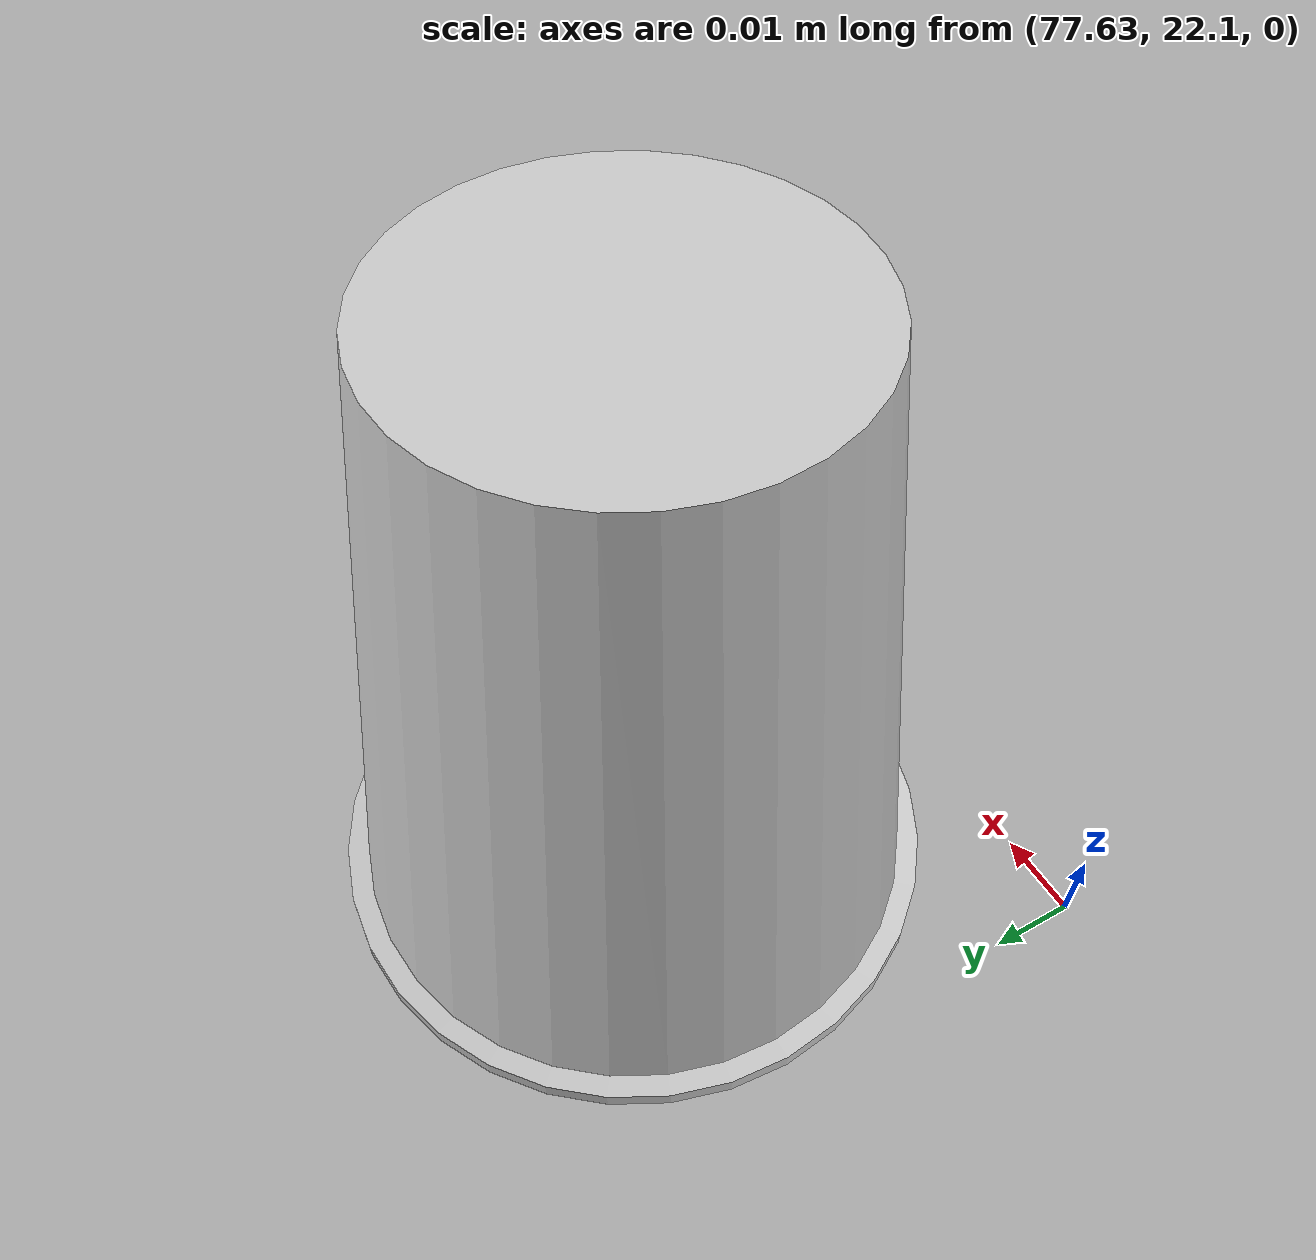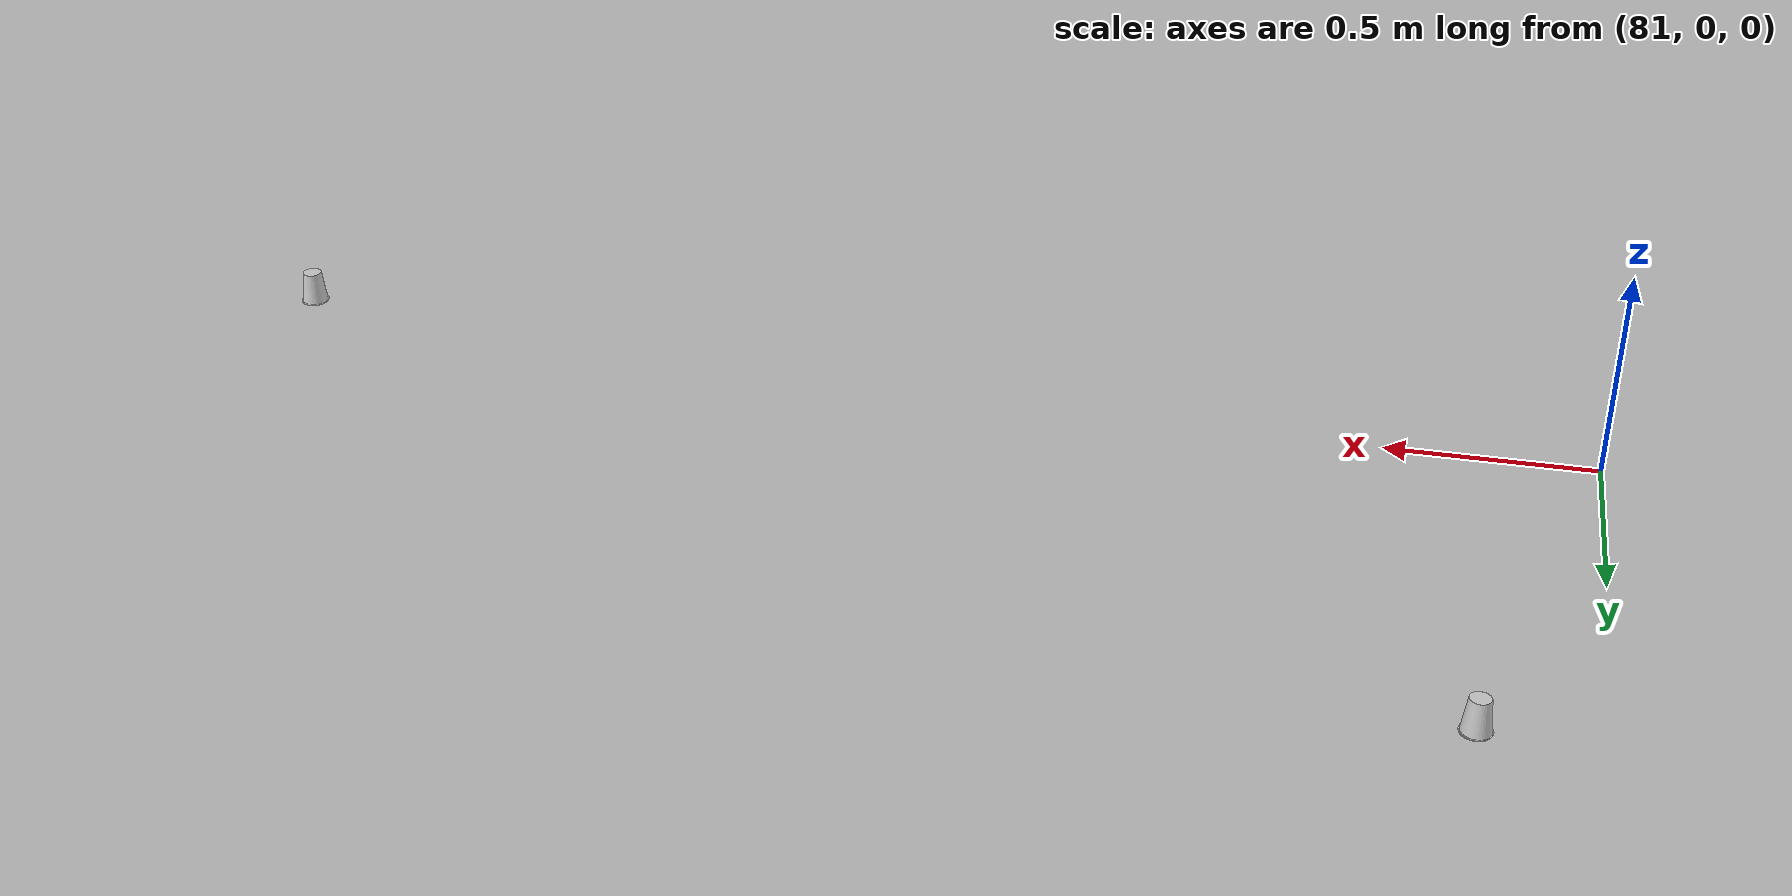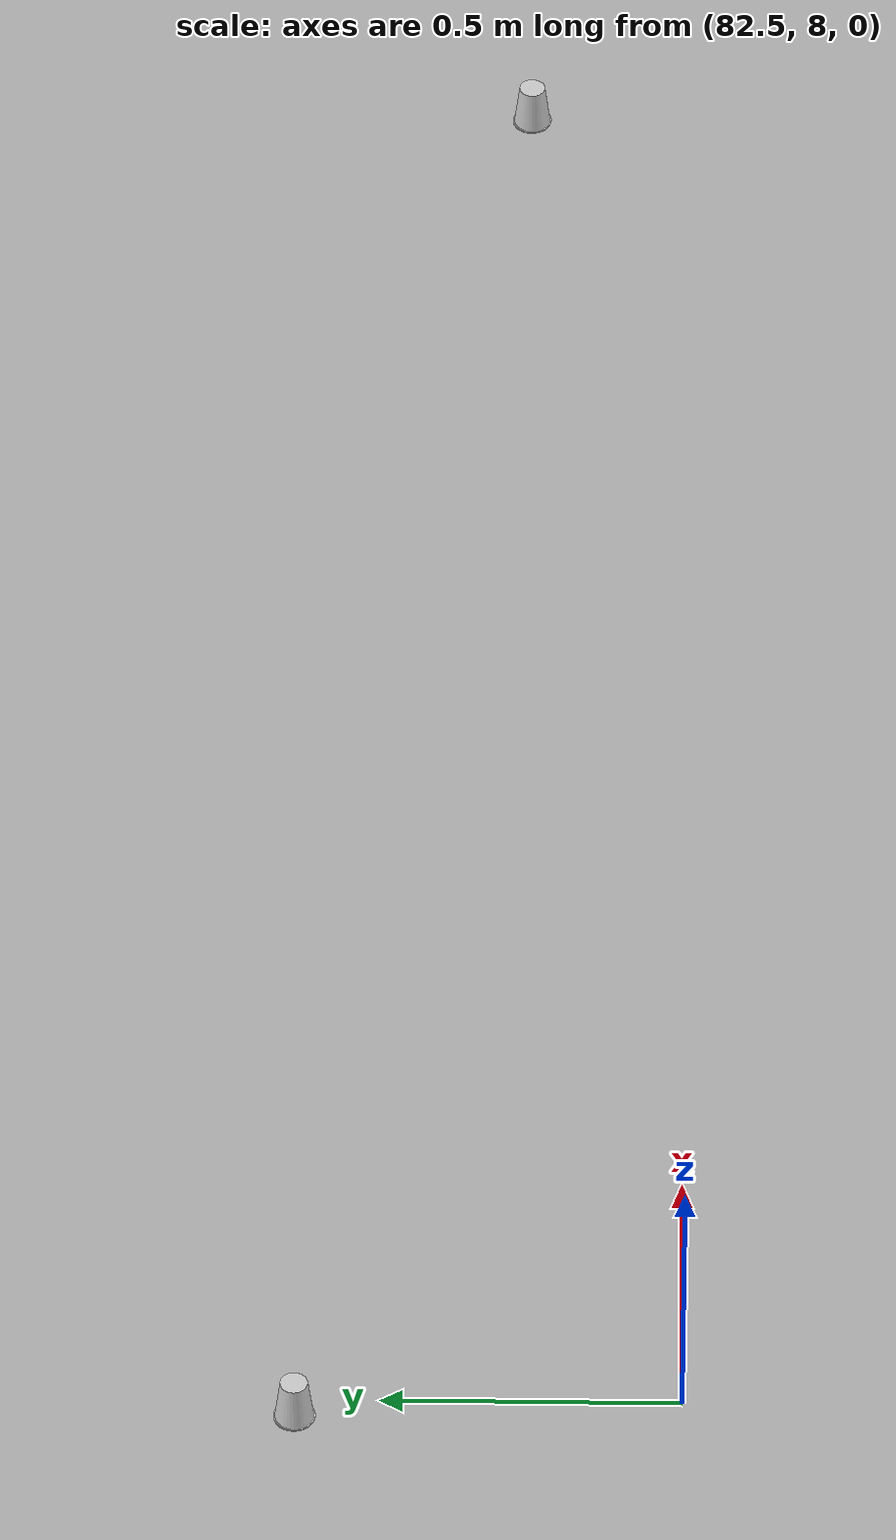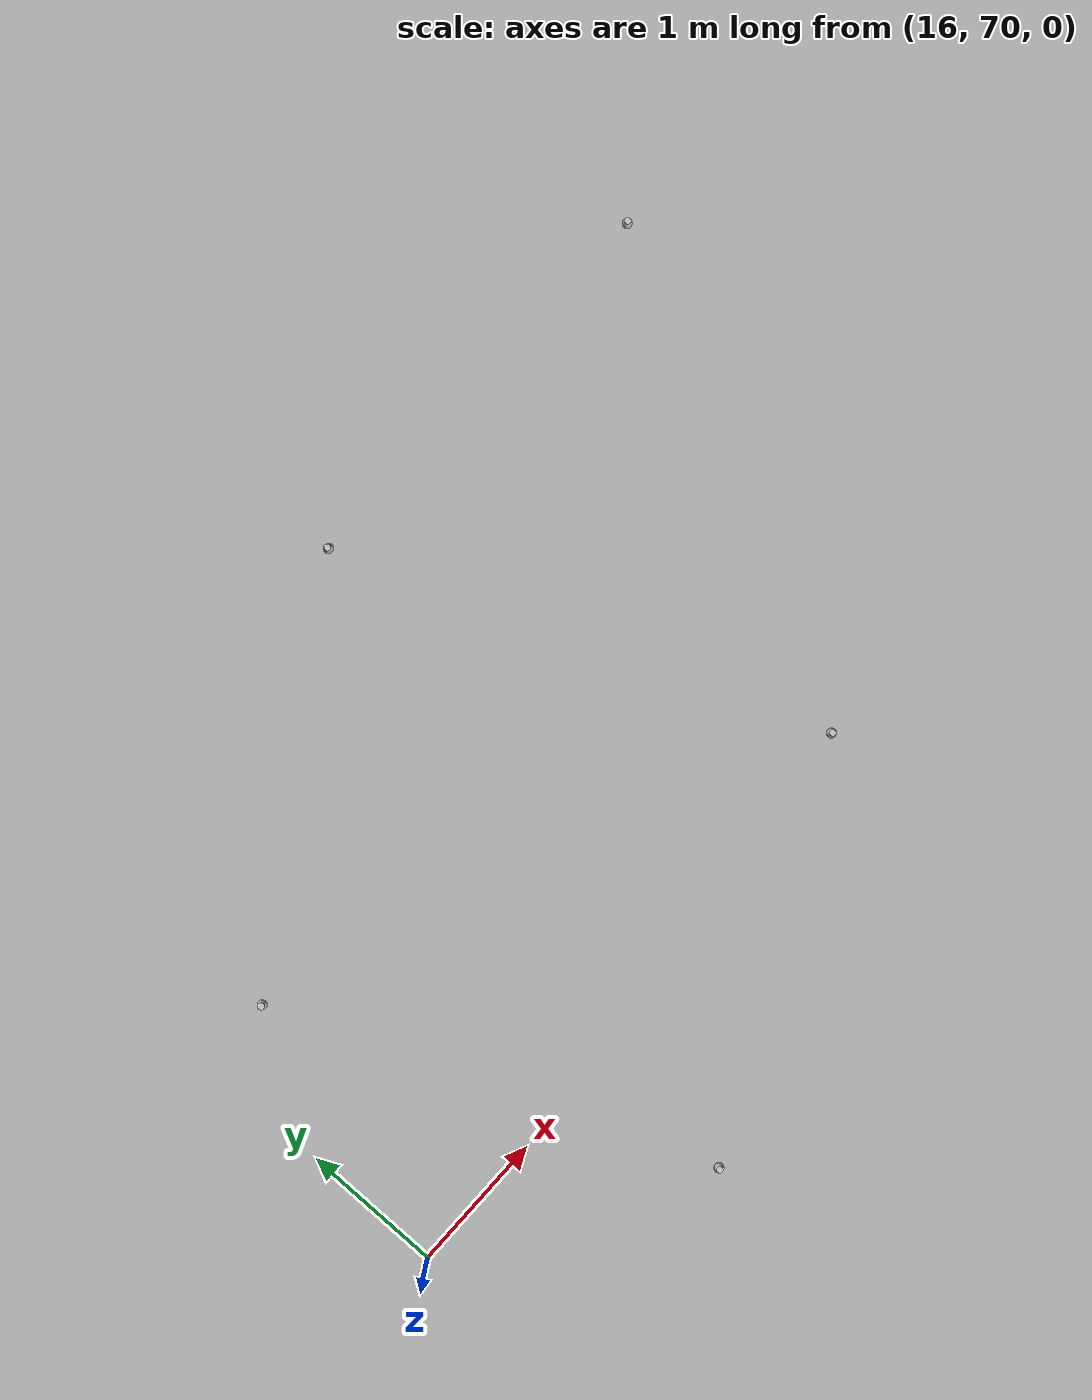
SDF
<?xml version='1.0' encoding='UTF-8'?>
<sdf version="1.4">
  <model name="some track">
    <include>
      <uri>model://cone_yellow</uri>
      <pose>3.882215022601452 -1.797297978044986 0 0 0 0</pose>
      <name>cone_right</name>
    </include>
    <include>
      <uri>model://cone_yellow</uri>
      <pose>7.891671089952982 -1.8409363456154262 0 0 0 0</pose>
      <name>cone_right</name>
    </include>
    <include>
      <uri>model://cone_yellow</uri>
      <pose>11.866871325148177 -1.8370316687459616 0 0 0 0</pose>
      <name>cone_right</name>
    </include>
    <include>
      <uri>model://cone_yellow</uri>
      <pose>15.81505661712021 -1.8526933715620444 0 0 0 0</pose>
      <name>cone_right</name>
    </include>
    <include>
      <uri>model://cone_yellow</uri>
      <pose>19.792605359863973 -1.8160668437269316 0 0 0 0</pose>
      <name>cone_right</name>
    </include>
    <include>
      <uri>model://cone_yellow</uri>
      <pose>23.77433902991659 -1.7148735920068297 0 0 0 0</pose>
      <name>cone_right</name>
    </include>
    <include>
      <uri>model://cone_yellow</uri>
      <pose>27.679037530347685 -1.7336472708352932 0 0 0 0</pose>
      <name>cone_right</name>
    </include>
    <include>
      <uri>model://cone_yellow</uri>
      <pose>31.6032659484331 -1.8295488659008463 0 0 0 0</pose>
      <name>cone_right</name>
    </include>
    <include>
      <uri>model://cone_yellow</uri>
      <pose>35.59734281316367 -1.8501600570787549 0 0 0 0</pose>
      <name>cone_right</name>
    </include>
    <include>
      <uri>model://cone_yellow</uri>
      <pose>39.559188197874654 -1.838586414346345 0 0 0 0</pose>
      <name>cone_right</name>
    </include>
    <include>
      <uri>model://cone_yellow</uri>
      <pose>43.483492806991165 -1.8569485618495234 0 0 0 0</pose>
      <name>cone_right</name>
    </include>
    <include>
      <uri>model://cone_yellow</uri>
      <pose>47.52266032827457 -1.818367892362298 0 0 0 0</pose>
      <name>cone_right</name>
    </include>
    <include>
      <uri>model://cone_yellow</uri>
      <pose>50.97496303147042 -2.589434194706195 0 0 0 0</pose>
      <name>cone_right</name>
    </include>
    <include>
      <uri>model://cone_yellow</uri>
      <pose>53.38892791012007 -4.7878785235748715 0 0 0 0</pose>
      <name>cone_right</name>
    </include>
    <include>
      <uri>model://cone_yellow</uri>
      <pose>55.83146065989252 -7.586071194064796 0 0 0 0</pose>
      <name>cone_right</name>
    </include>
    <include>
      <uri>model://cone_yellow</uri>
      <pose>59.12073898661306 -10.197054872425916 0 0 0 0</pose>
      <name>cone_right</name>
    </include>
    <include>
      <uri>model://cone_yellow</uri>
      <pose>63.326317080042 -11.826506626491966 0 0 0 0</pose>
      <name>cone_right</name>
    </include>
    <include>
      <uri>model://cone_yellow</uri>
      <pose>67.71026359245282 -12.304203330640783 0 0 0 0</pose>
      <name>cone_right</name>
    </include>
    <include>
      <uri>model://cone_yellow</uri>
      <pose>72.03467582218849 -11.716925490259332 0 0 0 0</pose>
      <name>cone_right</name>
    </include>
    <include>
      <uri>model://cone_yellow</uri>
      <pose>76.1486384196638 -10.110867423300377 0 0 0 0</pose>
      <name>cone_right</name>
    </include>
    <include>
      <uri>model://cone_yellow</uri>
      <pose>79.76032015970294 -7.575362119696767 0 0 0 0</pose>
      <name>cone_right</name>
    </include>
    <include>
      <uri>model://cone_yellow</uri>
      <pose>82.5289417860347 -4.188201596786433 0 0 0 0</pose>
      <name>cone_right</name>
    </include>
    <include>
      <uri>model://cone_yellow</uri>
      <pose>84.26956788033807 -0.15931915758991133 0 0 0 0</pose>
      <name>cone_right</name>
    </include>
    <include>
      <uri>model://cone_yellow</uri>
      <pose>85.2185985047116 4.076479915419728 0 0 0 0</pose>
      <name>cone_right</name>
    </include>
    <include>
      <uri>model://cone_yellow</uri>
      <pose>85.69480426033988 8.281995062981867 0 0 0 0</pose>
      <name>cone_right</name>
    </include>
    <include>
      <uri>model://cone_yellow</uri>
      <pose>85.61240148885437 12.47503529000548 0 0 0 0</pose>
      <name>cone_right</name>
    </include>
    <include>
      <uri>model://cone_yellow</uri>
      <pose>84.70246442850349 16.596424591282776 0 0 0 0</pose>
      <name>cone_right</name>
    </include>
    <include>
      <uri>model://cone_yellow</uri>
      <pose>82.8444487094808 20.50223780655276 0 0 0 0</pose>
      <name>cone_right</name>
    </include>
    <include>
      <uri>model://cone_yellow</uri>
      <pose>80.2933611533565 24.051425933988586 0 0 0 0</pose>
      <name>cone_right</name>
    </include>
    <include>
      <uri>model://cone_yellow</uri>
      <pose>76.9512035872424 26.8274940323691 0 0 0 0</pose>
      <name>cone_right</name>
    </include>
    <include>
      <uri>model://cone_yellow</uri>
      <pose>72.62712531799602 28.14852089452696 0 0 0 0</pose>
      <name>cone_right</name>
    </include>
    <include>
      <uri>model://cone_yellow</uri>
      <pose>68.15445732019367 28.523029960576803 0 0 0 0</pose>
      <name>cone_right</name>
    </include>
    <include>
      <uri>model://cone_yellow</uri>
      <pose>63.86287096714097 28.30015110019089 0 0 0 0</pose>
      <name>cone_right</name>
    </include>
    <include>
      <uri>model://cone_yellow</uri>
      <pose>59.938768139016396 26.332626457956916 0 0 0 0</pose>
      <name>cone_right</name>
    </include>
    <include>
      <uri>model://cone_yellow</uri>
      <pose>56.808835342433476 23.036085510342026 0 0 0 0</pose>
      <name>cone_right</name>
    </include>
    <include>
      <uri>model://cone_yellow</uri>
      <pose>48.24419389091466 22.9916455278231 0 0 0 0</pose>
      <name>cone_right</name>
    </include>
    <include>
      <uri>model://cone_yellow</uri>
      <pose>46.6837816929786 26.038190053744536 0 0 0 0</pose>
      <name>cone_right</name>
    </include>
    <include>
      <uri>model://cone_yellow</uri>
      <pose>45.37270099620925 29.918740547737027 0 0 0 0</pose>
      <name>cone_right</name>
    </include>
    <include>
      <uri>model://cone_yellow</uri>
      <pose>44.307074946961414 33.791072769345554 0 0 0 0</pose>
      <name>cone_right</name>
    </include>
    <include>
      <uri>model://cone_yellow</uri>
      <pose>43.465369120592705 37.509120995634 0 0 0 0</pose>
      <name>cone_right</name>
    </include>
    <include>
      <uri>model://cone_yellow</uri>
      <pose>42.78483383752167 41.219561691897155 0 0 0 0</pose>
      <name>cone_right</name>
    </include>
    <include>
      <uri>model://cone_yellow</uri>
      <pose>42.168628800677844 45.05914787227584 0 0 0 0</pose>
      <name>cone_right</name>
    </include>
    <include>
      <uri>model://cone_yellow</uri>
      <pose>41.43255944323224 49.010536477397466 0 0 0 0</pose>
      <name>cone_right</name>
    </include>
    <include>
      <uri>model://cone_yellow</uri>
      <pose>40.373673762367375 52.97840180846406 0 0 0 0</pose>
      <name>cone_right</name>
    </include>
    <include>
      <uri>model://cone_yellow</uri>
      <pose>38.8820741056482 56.85126623778744 0 0 0 0</pose>
      <name>cone_right</name>
    </include>
    <include>
      <uri>model://cone_yellow</uri>
      <pose>37.01225711445318 60.544122283432436 0 0 0 0</pose>
      <name>cone_right</name>
    </include>
    <include>
      <uri>model://cone_yellow</uri>
      <pose>34.82340235218731 64.03347614013687 0 0 0 0</pose>
      <name>cone_right</name>
    </include>
    <include>
      <uri>model://cone_yellow</uri>
      <pose>32.335835593993764 67.2943451884003 0 0 0 0</pose>
      <name>cone_right</name>
    </include>
    <include>
      <uri>model://cone_yellow</uri>
      <pose>29.316792096958924 70.22582086993263 0 0 0 0</pose>
      <name>cone_right</name>
    </include>
    <include>
      <uri>model://cone_yellow</uri>
      <pose>25.4951246059608 72.55912063338985 0 0 0 0</pose>
      <name>cone_right</name>
    </include>
    <include>
      <uri>model://cone_yellow</uri>
      <pose>16.524968536494264 71.95937051244665 0 0 0 0</pose>
      <name>cone_right</name>
    </include>
    <include>
      <uri>model://cone_yellow</uri>
      <pose>13.211893087349726 68.57543601107022 0 0 0 0</pose>
      <name>cone_right</name>
    </include>
    <include>
      <uri>model://cone_yellow</uri>
      <pose>11.043722947551762 64.84434640000454 0 0 0 0</pose>
      <name>cone_right</name>
    </include>
    <include>
      <uri>model://cone_yellow</uri>
      <pose>9.110313884549821 61.396429885623895 0 0 0 0</pose>
      <name>cone_right</name>
    </include>
    <include>
      <uri>model://cone_yellow</uri>
      <pose>6.998596802478076 58.1858837850496 0 0 0 0</pose>
      <name>cone_right</name>
    </include>
    <include>
      <uri>model://cone_yellow</uri>
      <pose>4.792239292470265 54.91831240557997 0 0 0 0</pose>
      <name>cone_right</name>
    </include>
    <include>
      <uri>model://cone_yellow</uri>
      <pose>2.685236069836724 51.483720447758536 0 0 0 0</pose>
      <name>cone_right</name>
    </include>
    <include>
      <uri>model://cone_yellow</uri>
      <pose>0.6618306942688537 48.05734172174414 0 0 0 0</pose>
      <name>cone_right</name>
    </include>
    <include>
      <uri>model://cone_yellow</uri>
      <pose>-1.5874035688377386 44.99290192058357 0 0 0 0</pose>
      <name>cone_right</name>
    </include>
    <include>
      <uri>model://cone_yellow</uri>
      <pose>-4.405413926328844 42.50792245162447 0 0 0 0</pose>
      <name>cone_right</name>
    </include>
    <include>
      <uri>model://cone_yellow</uri>
      <pose>-7.689444669299568 41.059325921174235 0 0 0 0</pose>
      <name>cone_right</name>
    </include>
    <include>
      <uri>model://cone_yellow</uri>
      <pose>-10.77401763589904 41.323895810497 0 0 0 0</pose>
      <name>cone_right</name>
    </include>
    <include>
      <uri>model://cone_yellow</uri>
      <pose>-14.114295783776837 42.50214765227788 0 0 0 0</pose>
      <name>cone_right</name>
    </include>
    <include>
      <uri>model://cone_yellow</uri>
      <pose>-18.478908064798528 42.90732405345164 0 0 0 0</pose>
      <name>cone_right</name>
    </include>
    <include>
      <uri>model://cone_yellow</uri>
      <pose>-23.029855366707594 41.564226604524116 0 0 0 0</pose>
      <name>cone_right</name>
    </include>
    <include>
      <uri>model://cone_yellow</uri>
      <pose>-26.75083639348957 38.87578738319823 0 0 0 0</pose>
      <name>cone_right</name>
    </include>
    <include>
      <uri>model://cone_yellow</uri>
      <pose>-29.343798680385696 35.34094884152863 0 0 0 0</pose>
      <name>cone_right</name>
    </include>
    <include>
      <uri>model://cone_yellow</uri>
      <pose>-31.346953209520258 31.664867419598146 0 0 0 0</pose>
      <name>cone_right</name>
    </include>
    <include>
      <uri>model://cone_yellow</uri>
      <pose>-33.63614204729522 28.381314822386326 0 0 0 0</pose>
      <name>cone_right</name>
    </include>
    <include>
      <uri>model://cone_yellow</uri>
      <pose>-36.45200060195512 26.03685414216051 0 0 0 0</pose>
      <name>cone_right</name>
    </include>
    <include>
      <uri>model://cone_yellow</uri>
      <pose>-39.50796314501814 25.361101430259883 0 0 0 0</pose>
      <name>cone_right</name>
    </include>
    <include>
      <uri>model://cone_yellow</uri>
      <pose>-42.912950655793146 25.79822992535056 0 0 0 0</pose>
      <name>cone_right</name>
    </include>
    <include>
      <uri>model://cone_yellow</uri>
      <pose>-46.84357630084678 26.189910793522927 0 0 0 0</pose>
      <name>cone_right</name>
    </include>
    <include>
      <uri>model://cone_yellow</uri>
      <pose>-50.819896713981066 26.523438475414487 0 0 0 0</pose>
      <name>cone_right</name>
    </include>
    <include>
      <uri>model://cone_yellow</uri>
      <pose>-55.007082497169726 26.288305172242413 0 0 0 0</pose>
      <name>cone_right</name>
    </include>
    <include>
      <uri>model://cone_yellow</uri>
      <pose>-61.882133750926904 20.218291921152584 0 0 0 0</pose>
      <name>cone_right</name>
    </include>
    <include>
      <uri>model://cone_yellow</uri>
      <pose>-62.234980679534026 15.44579144631471 0 0 0 0</pose>
      <name>cone_right</name>
    </include>
    <include>
      <uri>model://cone_yellow</uri>
      <pose>-61.96408465939989 11.340269843285235 0 0 0 0</pose>
      <name>cone_right</name>
    </include>
    <include>
      <uri>model://cone_yellow</uri>
      <pose>-61.715734286445766 7.36331317043855 0 0 0 0</pose>
      <name>cone_right</name>
    </include>
    <include>
      <uri>model://cone_yellow</uri>
      <pose>-59.488504787973824 3.2635944317397345 0 0 0 0</pose>
      <name>cone_right</name>
    </include>
    <include>
      <uri>model://cone_yellow</uri>
      <pose>-50.71499439726178 0.4542000076885868 0 0 0 0</pose>
      <name>cone_right</name>
    </include>
    <include>
      <uri>model://cone_yellow</uri>
      <pose>-46.787150387856926 0.024441789763142596 0 0 0 0</pose>
      <name>cone_right</name>
    </include>
    <include>
      <uri>model://cone_yellow</uri>
      <pose>-43.06901241365106 -0.773145009553541 0 0 0 0</pose>
      <name>cone_right</name>
    </include>
    <include>
      <uri>model://cone_yellow</uri>
      <pose>-39.51444111225103 -2.0164192785865174 0 0 0 0</pose>
      <name>cone_right</name>
    </include>
    <include>
      <uri>model://cone_yellow</uri>
      <pose>-35.88284278217618 -3.4295531292856003 0 0 0 0</pose>
      <name>cone_right</name>
    </include>
    <include>
      <uri>model://cone_yellow</uri>
      <pose>-31.79908317055549 -4.358768224676805 0 0 0 0</pose>
      <name>cone_right</name>
    </include>
    <include>
      <uri>model://cone_yellow</uri>
      <pose>-27.52447174795141 -4.536176668329134 0 0 0 0</pose>
      <name>cone_right</name>
    </include>
    <include>
      <uri>model://cone_yellow</uri>
      <pose>-23.37262542747374 -4.164780256138773 0 0 0 0</pose>
      <name>cone_right</name>
    </include>
    <include>
      <uri>model://cone_yellow</uri>
      <pose>-19.351141600541872 -3.479459342207514 0 0 0 0</pose>
      <name>cone_right</name>
    </include>
    <include>
      <uri>model://cone_yellow</uri>
      <pose>-15.413623917511998 -2.69438192901885 0 0 0 0</pose>
      <name>cone_right</name>
    </include>
    <include>
      <uri>model://cone_yellow</uri>
      <pose>-11.540188722307857 -2.0399241852765444 0 0 0 0</pose>
      <name>cone_right</name>
    </include>
    <include>
      <uri>model://cone_yellow</uri>
      <pose>-7.7510606953390955 -1.7757166057636231 0 0 0 0</pose>
      <name>cone_right</name>
    </include>
    <include>
      <uri>model://cone_yellow</uri>
      <pose>-4.009992143750308 -2.0210577904386127 0 0 0 0</pose>
      <name>cone_right</name>
    </include>
    <include>
      <uri>model://cone_yellow</uri>
      <pose>54.12430297069305 21.703756267385096 0 0 0 0</pose>
      <name>cone_right</name>
    </include>
    <include>
      <uri>model://cone_yellow</uri>
      <pose>51.06932286543933 21.89772325819485 0 0 0 0</pose>
      <name>cone_right</name>
    </include>
    <include>
      <uri>model://cone_yellow</uri>
      <pose>22.059314869226185 73.6356539148297 0 0 0 0</pose>
      <name>cone_right</name>
    </include>
    <include>
      <uri>model://cone_yellow</uri>
      <pose>19.099613471372194 73.67219343826 0 0 0 0</pose>
      <name>cone_right</name>
    </include>
    <include>
      <uri>model://cone_yellow</uri>
      <pose>-57.92190106306539 25.378928923962686 0 0 0 0</pose>
      <name>cone_right</name>
    </include>
    <include>
      <uri>model://cone_yellow</uri>
      <pose>-59.98848560959581 23.27182311181401 0 0 0 0</pose>
      <name>cone_right</name>
    </include>
    <include>
      <uri>model://cone_yellow</uri>
      <pose>-54.116961842699396 0.6184717099220336 0 0 0 0</pose>
      <name>cone_right</name>
    </include>
    <include>
      <uri>model://cone_yellow</uri>
      <pose>-56.956586847594764 1.1222761462744373 0 0 0 0</pose>
      <name>cone_right</name>
    </include>
    <include>
      <uri>model://cone_blue</uri>
      <pose>4.025001619059125 1.4495638896469603 0 0 0 0</pose>
      <name>cone_left</name>
    </include>
    <include>
      <uri>model://cone_blue</uri>
      <pose>7.926311842754232 1.4088790365632846 0 0 0 0</pose>
      <name>cone_left</name>
    </include>
    <include>
      <uri>model://cone_blue</uri>
      <pose>11.86358853441134 1.4129666732974584 0 0 0 0</pose>
      <name>cone_left</name>
    </include>
    <include>
      <uri>model://cone_blue</uri>
      <pose>15.82793211768886 1.3972811239509755 0 0 0 0</pose>
      <name>cone_left</name>
    </include>
    <include>
      <uri>model://cone_blue</uri>
      <pose>19.762563842211538 1.4337943082635864 0 0 0 0</pose>
      <name>cone_left</name>
    </include>
    <include>
      <uri>model://cone_blue</uri>
      <pose>23.691594653873786 1.53407290928144 0 0 0 0</pose>
      <name>cone_left</name>
    </include>
    <include>
      <uri>model://cone_blue</uri>
      <pose>27.694051334911755 1.516318049852377 0 0 0 0</pose>
      <name>cone_left</name>
    </include>
    <include>
      <uri>model://cone_blue</uri>
      <pose>31.682404955241086 1.4194874554722225 0 0 0 0</pose>
      <name>cone_left</name>
    </include>
    <include>
      <uri>model://cone_blue</uri>
      <pose>35.61386858139267 1.3997979271088012 0 0 0 0</pose>
      <name>cone_left</name>
    </include>
    <include>
      <uri>model://cone_blue</uri>
      <pose>39.54965122961442 1.4113995927368244 0 0 0 0</pose>
      <name>cone_left</name>
    </include>
    <include>
      <uri>model://cone_blue</uri>
      <pose>43.49866077985243 1.3930160429730094 0 0 0 0</pose>
      <name>cone_left</name>
    </include>
    <include>
      <uri>model://cone_blue</uri>
      <pose>47.49148600533465 1.4314825905967623 0 0 0 0</pose>
      <name>cone_left</name>
    </include>
    <include>
      <uri>model://cone_blue</uri>
      <pose>51.64872960556281 0.5899586095310878 0 0 0 0</pose>
      <name>cone_left</name>
    </include>
    <include>
      <uri>model://cone_blue</uri>
      <pose>55.4416528640132 -2.2681919828193657 0 0 0 0</pose>
      <name>cone_left</name>
    </include>
    <include>
      <uri>model://cone_blue</uri>
      <pose>58.267345282961635 -5.434567974663204 0 0 0 0</pose>
      <name>cone_left</name>
    </include>
    <include>
      <uri>model://cone_blue</uri>
      <pose>61.12488207433795 -7.63855717183587 0 0 0 0</pose>
      <name>cone_left</name>
    </include>
    <include>
      <uri>model://cone_blue</uri>
      <pose>64.44749438924498 -8.77602118293903 0 0 0 0</pose>
      <name>cone_left</name>
    </include>
    <include>
      <uri>model://cone_blue</uri>
      <pose>68.02359545686487 -9.06934272425539 0 0 0 0</pose>
      <name>cone_left</name>
    </include>
    <include>
      <uri>model://cone_blue</uri>
      <pose>71.562283852897 -8.501440172714108 0 0 0 0</pose>
      <name>cone_left</name>
    </include>
    <include>
      <uri>model://cone_blue</uri>
      <pose>74.93576985087233 -7.095664306620222 0 0 0 0</pose>
      <name>cone_left</name>
    </include>
    <include>
      <uri>model://cone_blue</uri>
      <pose>77.86492648881331 -4.935289614565225 0 0 0 0</pose>
      <name>cone_left</name>
    </include>
    <include>
      <uri>model://cone_blue</uri>
      <pose>79.98371922719107 -2.1672260585986103 0 0 0 0</pose>
      <name>cone_left</name>
    </include>
    <include>
      <uri>model://cone_blue</uri>
      <pose>81.26815281895269 1.0872792658363648 0 0 0 0</pose>
      <name>cone_left</name>
    </include>
    <include>
      <uri>model://cone_blue</uri>
      <pose>82.04301824877084 4.767992777251784 0 0 0 0</pose>
      <name>cone_left</name>
    </include>
    <include>
      <uri>model://cone_blue</uri>
      <pose>82.46469386008559 8.641003143906214 0 0 0 0</pose>
      <name>cone_left</name>
    </include>
    <include>
      <uri>model://cone_blue</uri>
      <pose>82.36326954894326 12.399924458233869 0 0 0 0</pose>
      <name>cone_left</name>
    </include>
    <include>
      <uri>model://cone_blue</uri>
      <pose>81.5344761241548 15.870924692240813 0 0 0 0</pose>
      <name>cone_left</name>
    </include>
    <include>
      <uri>model://cone_blue</uri>
      <pose>79.92339471357973 19.07747693081596 0 0 0 0</pose>
      <name>cone_left</name>
    </include>
    <include>
      <uri>model://cone_blue</uri>
      <pose>77.66517542326619 22.13958395093933 0 0 0 0</pose>
      <name>cone_left</name>
    </include>
    <include>
      <uri>model://cone_blue</uri>
      <pose>74.9065573893315 24.301247424183654 0 0 0 0</pose>
      <name>cone_left</name>
    </include>
    <include>
      <uri>model://cone_blue</uri>
      <pose>71.77252483033763 25.012893683506164 0 0 0 0</pose>
      <name>cone_left</name>
    </include>
    <include>
      <uri>model://cone_blue</uri>
      <pose>67.90415868799542 25.28268266519014 0 0 0 0</pose>
      <name>cone_left</name>
    </include>
    <include>
      <uri>model://cone_blue</uri>
      <pose>64.0421504150181 25.055099655364653 0 0 0 0</pose>
      <name>cone_left</name>
    </include>
    <include>
      <uri>model://cone_blue</uri>
      <pose>61.499588072479774 23.481952654221498 0 0 0 0</pose>
      <name>cone_left</name>
    </include>
    <include>
      <uri>model://cone_blue</uri>
      <pose>59.20834827594299 20.844091513561793 0 0 0 0</pose>
      <name>cone_left</name>
    </include>
    <include>
      <uri>model://cone_blue</uri>
      <pose>55.1817659739293 18.431643938604992 0 0 0 0</pose>
      <name>cone_left</name>
    </include>
    <include>
      <uri>model://cone_blue</uri>
      <pose>46.452481899651005 20.280138909656355 0 0 0 0</pose>
      <name>cone_left</name>
    </include>
    <include>
      <uri>model://cone_blue</uri>
      <pose>43.86895359816015 24.41361540276025 0 0 0 0</pose>
      <name>cone_left</name>
    </include>
    <include>
      <uri>model://cone_blue</uri>
      <pose>42.301228245595595 28.856405787768313 0 0 0 0</pose>
      <name>cone_left</name>
    </include>
    <include>
      <uri>model://cone_blue</uri>
      <pose>41.174266590184295 32.92619601528896 0 0 0 0</pose>
      <name>cone_left</name>
    </include>
    <include>
      <uri>model://cone_blue</uri>
      <pose>40.29590729129074 36.79008573043638 0 0 0 0</pose>
      <name>cone_left</name>
    </include>
    <include>
      <uri>model://cone_blue</uri>
      <pose>39.58837235855325 40.63208061690743 0 0 0 0</pose>
      <name>cone_left</name>
    </include>
    <include>
      <uri>model://cone_blue</uri>
      <pose>38.95974570274041 44.543813743994555 0 0 0 0</pose>
      <name>cone_left</name>
    </include>
    <include>
      <uri>model://cone_blue</uri>
      <pose>38.23759727771908 48.41495544937574 0 0 0 0</pose>
      <name>cone_left</name>
    </include>
    <include>
      <uri>model://cone_blue</uri>
      <pose>37.23456782667979 52.1366691166129 0 0 0 0</pose>
      <name>cone_left</name>
    </include>
    <include>
      <uri>model://cone_blue</uri>
      <pose>35.851904602693 55.67628845784424 0 0 0 0</pose>
      <name>cone_left</name>
    </include>
    <include>
      <uri>model://cone_blue</uri>
      <pose>34.11568196706534 59.07023205158506 0 0 0 0</pose>
      <name>cone_left</name>
    </include>
    <include>
      <uri>model://cone_blue</uri>
      <pose>32.07308636237827 62.301927135285794 0 0 0 0</pose>
      <name>cone_left</name>
    </include>
    <include>
      <uri>model://cone_blue</uri>
      <pose>29.755132013345463 65.31887840082096 0 0 0 0</pose>
      <name>cone_left</name>
    </include>
    <include>
      <uri>model://cone_blue</uri>
      <pose>27.063051533699475 67.8842074360971 0 0 0 0</pose>
      <name>cone_left</name>
    </include>
    <include>
      <uri>model://cone_blue</uri>
      <pose>23.82756644329412 69.7695418526196 0 0 0 0</pose>
      <name>cone_left</name>
    </include>
    <include>
      <uri>model://cone_blue</uri>
      <pose>20.430399966067867 70.33553499854962 0 0 0 0</pose>
      <name>cone_left</name>
    </include>
    <include>
      <uri>model://cone_blue</uri>
      <pose>17.7566056376754 68.95178509371054 0 0 0 0</pose>
      <name>cone_left</name>
    </include>
    <include>
      <uri>model://cone_blue</uri>
      <pose>15.607240555749616 66.37889088163851 0 0 0 0</pose>
      <name>cone_left</name>
    </include>
    <include>
      <uri>model://cone_blue</uri>
      <pose>13.869124124388255 63.23823052936165 0 0 0 0</pose>
      <name>cone_left</name>
    </include>
    <include>
      <uri>model://cone_blue</uri>
      <pose>11.94506635890371 59.80687698963569 0 0 0 0</pose>
      <name>cone_left</name>
    </include>
    <include>
      <uri>model://cone_blue</uri>
      <pose>9.715723882996144 56.40270672476777 0 0 0 0</pose>
      <name>cone_left</name>
    </include>
    <include>
      <uri>model://cone_blue</uri>
      <pose>7.4857762831826395 53.099697966050755 0 0 0 0</pose>
      <name>cone_left</name>
    </include>
    <include>
      <uri>model://cone_blue</uri>
      <pose>5.4561592004723085 49.78534327995725 0 0 0 0</pose>
      <name>cone_left</name>
    </include>
    <include>
      <uri>model://cone_blue</uri>
      <pose>3.460388958951469 46.40489758072859 0 0 0 0</pose>
      <name>cone_left</name>
    </include>
    <include>
      <uri>model://cone_blue</uri>
      <pose>1.0365247285145338 43.07522095380259 0 0 0 0</pose>
      <name>cone_left</name>
    </include>
    <include>
      <uri>model://cone_blue</uri>
      <pose>-2.233308706105093 40.09039087741975 0 0 0 0</pose>
      <name>cone_left</name>
    </include>
    <include>
      <uri>model://cone_blue</uri>
      <pose>-6.319210557229533 38.11230056021793 0 0 0 0</pose>
      <name>cone_left</name>
    </include>
    <include>
      <uri>model://cone_blue</uri>
      <pose>-15.13644519108829 39.41706895163946 0 0 0 0</pose>
      <name>cone_left</name>
    </include>
    <include>
      <uri>model://cone_blue</uri>
      <pose>-18.745542803036106 39.66828007160067 0 0 0 0</pose>
      <name>cone_left</name>
    </include>
    <include>
      <uri>model://cone_blue</uri>
      <pose>-22.027816527526603 38.472557449395644 0 0 0 0</pose>
      <name>cone_left</name>
    </include>
    <include>
      <uri>model://cone_blue</uri>
      <pose>-24.79707256051207 36.2786145193039 0 0 0 0</pose>
      <name>cone_left</name>
    </include>
    <include>
      <uri>model://cone_blue</uri>
      <pose>-26.68954036030192 33.465472163383566 0 0 0 0</pose>
      <name>cone_left</name>
    </include>
    <include>
      <uri>model://cone_blue</uri>
      <pose>-28.48889201709426 30.1176162375503 0 0 0 0</pose>
      <name>cone_left</name>
    </include>
    <include>
      <uri>model://cone_blue</uri>
      <pose>-30.96552962706943 26.529200003878653 0 0 0 0</pose>
      <name>cone_left</name>
    </include>
    <include>
      <uri>model://cone_blue</uri>
      <pose>-34.33669257845149 23.56947254100896 0 0 0 0</pose>
      <name>cone_left</name>
    </include>
    <include>
      <uri>model://cone_blue</uri>
      <pose>-43.22658591531799 22.563398720483328 0 0 0 0</pose>
      <name>cone_left</name>
    </include>
    <include>
      <uri>model://cone_blue</uri>
      <pose>-47.165833085134906 22.955927094587466 0 0 0 0</pose>
      <name>cone_left</name>
    </include>
    <include>
      <uri>model://cone_blue</uri>
      <pose>-51.091385541997994 23.284797739509685 0 0 0 0</pose>
      <name>cone_left</name>
    </include>
    <include>
      <uri>model://cone_blue</uri>
      <pose>-54.81190212133145 23.044171293857058 0 0 0 0</pose>
      <name>cone_left</name>
    </include>
    <include>
      <uri>model://cone_blue</uri>
      <pose>-57.7401461026098 21.331952846858393 0 0 0 0</pose>
      <name>cone_left</name>
    </include>
    <include>
      <uri>model://cone_blue</uri>
      <pose>-59.07980394945353 18.57225192049215 0 0 0 0</pose>
      <name>cone_left</name>
    </include>
    <include>
      <uri>model://cone_blue</uri>
      <pose>-58.98669034919164 15.340387794555786 0 0 0 0</pose>
      <name>cone_left</name>
    </include>
    <include>
      <uri>model://cone_blue</uri>
      <pose>-58.72156779046284 11.560688432924792 0 0 0 0</pose>
      <name>cone_left</name>
    </include>
    <include>
      <uri>model://cone_blue</uri>
      <pose>-58.47205402676644 7.565892470878323 0 0 0 0</pose>
      <name>cone_left</name>
    </include>
    <include>
      <uri>model://cone_blue</uri>
      <pose>-56.694302468210665 4.9233936353273755 0 0 0 0</pose>
      <name>cone_left</name>
    </include>
    <include>
      <uri>model://cone_blue</uri>
      <pose>-53.8338948693817 3.9980224250830565 0 0 0 0</pose>
      <name>cone_left</name>
    </include>
    <include>
      <uri>model://cone_blue</uri>
      <pose>-50.35456503048456 3.6841521236749166 0 0 0 0</pose>
      <name>cone_left</name>
    </include>
    <include>
      <uri>model://cone_blue</uri>
      <pose>-46.43366989434389 3.2551617622624285 0 0 0 0</pose>
      <name>cone_left</name>
    </include>
    <include>
      <uri>model://cone_blue</uri>
      <pose>-42.394165146516606 2.40601858580313 0 0 0 0</pose>
      <name>cone_left</name>
    </include>
    <include>
      <uri>model://cone_blue</uri>
      <pose>-38.45160544343174 1.0548801762184785 0 0 0 0</pose>
      <name>cone_left</name>
    </include>
    <include>
      <uri>model://cone_blue</uri>
      <pose>-34.70517464028393 -0.4004282147975802 0 0 0 0</pose>
      <name>cone_left</name>
    </include>
    <include>
      <uri>model://cone_blue</uri>
      <pose>-31.092105190498508 -1.1865951310839367 0 0 0 0</pose>
      <name>cone_left</name>
    </include>
    <include>
      <uri>model://cone_blue</uri>
      <pose>-27.41057876012035 -1.2881729141251894 0 0 0 0</pose>
      <name>cone_left</name>
    </include>
    <include>
      <uri>model://cone_blue</uri>
      <pose>-23.67242264430966 -0.9286372387834763 0 0 0 0</pose>
      <name>cone_left</name>
    </include>
    <include>
      <uri>model://cone_blue</uri>
      <pose>-19.900960692725974 -0.2763048086469104 0 0 0 0</pose>
      <name>cone_left</name>
    </include>
    <include>
      <uri>model://cone_blue</uri>
      <pose>-16.049581608660024 0.4927888877196678 0 0 0 0</pose>
      <name>cone_left</name>
    </include>
    <include>
      <uri>model://cone_blue</uri>
      <pose>-12.082208891584973 1.1645592576666088 0 0 0 0</pose>
      <name>cone_left</name>
    </include>
    <include>
      <uri>model://cone_blue</uri>
      <pose>-7.983509929842368 1.4659600211346924 0 0 0 0</pose>
      <name>cone_left</name>
    </include>
    <include>
      <uri>model://cone_blue</uri>
      <pose>-3.8097707016470514 1.2227688655530564 0 0 0 0</pose>
      <name>cone_left</name>
    </include>
    <include>
      <uri>model://cone_blue</uri>
      <pose>52.087649567190574 17.533465964975267 0 0 0 0</pose>
      <name>cone_left</name>
    </include>
    <include>
      <uri>model://cone_blue</uri>
      <pose>48.83870247112711 18.066875189702106 0 0 0 0</pose>
      <name>cone_left</name>
    </include>
    <include>
      <uri>model://cone_blue</uri>
      <pose>-9.658513948413862 37.32906994640163 0 0 0 0</pose>
      <name>cone_left</name>
    </include>
    <include>
      <uri>model://cone_blue</uri>
      <pose>-12.465586711939224 38.28062003573226 0 0 0 0</pose>
      <name>cone_left</name>
    </include>
    <include>
      <uri>model://cone_blue</uri>
      <pose>-36.72927914472389 21.813057549557232 0 0 0 0</pose>
      <name>cone_left</name>
    </include>
    <include>
      <uri>model://cone_blue</uri>
      <pose>-39.80889533171042 21.813057549557232 0 0 0 0</pose>
      <name>cone_left</name>
    </include>
    <include>
      <uri>model://cone_orange_big</uri>
      <pose>-1.3 2.125 0 0 0 0</pose>
      <name>cone_orange_big</name>
    </include>
    <include>
      <uri>model://cone_orange_big</uri>
      <pose>-1.3 -2.125 0 0 0 0</pose>
      <name>cone_orange_big</name>
    </include>
    <include>
      <uri>model://cone_orange_big</uri>
      <pose>1.3 2.125 0 0 0 0</pose>
      <name>cone_orange_big</name>
    </include>
    <include>
      <uri>model://cone_orange_big</uri>
      <pose>1.3 -2.125 0 0 0 0</pose>
      <name>cone_orange_big</name>
    </include>
  </model>
</sdf>

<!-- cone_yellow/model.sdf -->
<sdf version='1.4'>
  <model name="cone_yellow">
    <link name="link">
    <collision name="collision"><geometry><box><size> 0.05 0.05 0.01</size>
             </box></geometry></collision>
      <visual name="visual">
        <geometry>
          <mesh>
            <uri>model://cup.dae</uri>
            <scale>1 1 1</scale>
          </mesh>
        </geometry>
        <material>
            <script>
              <uri>model://cone_yellow/materials/scripts</uri>
              <uri>model://cone_yellow/materials/textures</uri>
              <name>cone_yellow/Image</name>
            </script>
        </material>
      </visual>
    </link>
  </model>
</sdf>

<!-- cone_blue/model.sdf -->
<sdf version='1.4'>
  <model name="cone_blue">
    <link name="link">
    <collision name="collision"><geometry><box><size> 0.05 0.05 0.01</size>
             </box></geometry></collision>
      <visual name="visual">
        <geometry>
          <mesh>
            <uri>model://cup.dae</uri>
            <scale>1 1 1</scale>
          </mesh>
        </geometry>
        <material>
            <script>
              <uri>model://cone_blue/materials/scripts</uri>
              <uri>model://cone_blue/materials/textures</uri>
              <name>cone_blue/Image</name>
            </script>
        </material>
      </visual>
    </link>
  </model>
</sdf>

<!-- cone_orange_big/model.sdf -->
<sdf version='1.4'>
  <model name="cone_orange_big">
    <link name="link">
    <collision name="collision"><geometry><box><size> 0.05 0.05 0.01</size>
             </box></geometry></collision>
      <visual name="visual">
        <geometry>
          <mesh>
            <uri>model://cup.dae</uri>
            <scale>1 1 1</scale>
          </mesh>
        </geometry>
        <material>
            <script>
              <uri>model://cone_orange_big/materials/scripts</uri>
              <uri>model://cone_orange_big/materials/textures</uri>
              <name>cone_orange_big/Image</name>
            </script>
        </material>
      </visual>
    </link>
  </model>
</sdf>
